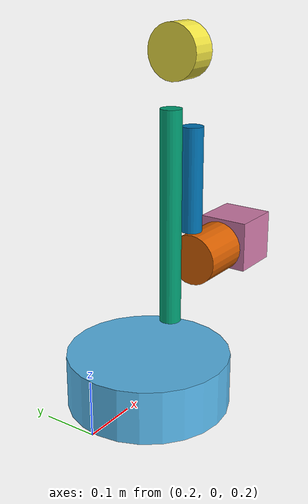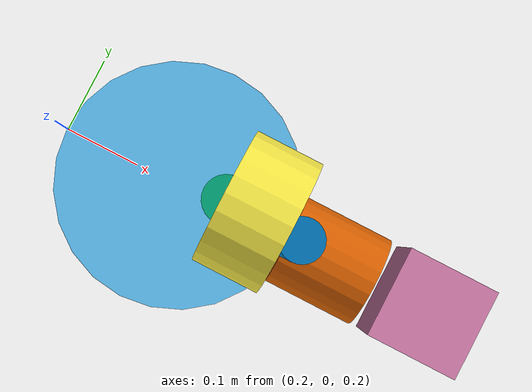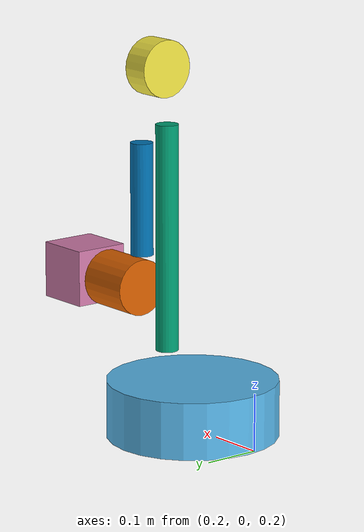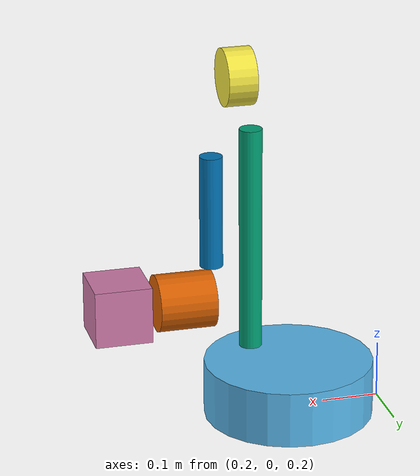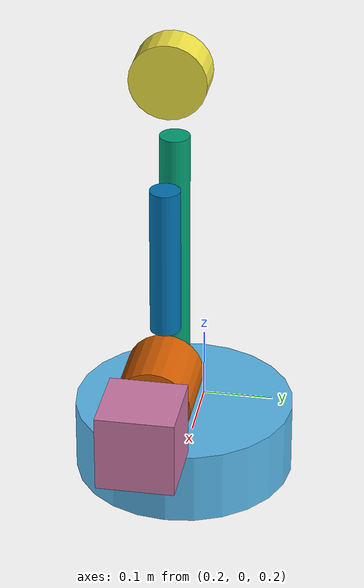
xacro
<?xml version="1.0"?>
<robot xmlns:xacro="http://www.ros.org/wiki/xacro" name="mr2_manipulator_ak_can">
  <xacro:arg name="can_iface" default="can0"/>

  <link name="base_link"/>

  <xacro:include filename="manipulator.xacro"/>
  <xacro:include filename="$(find mr2_rover_description)/ros2_control/rover_can.ros2_control.xacro"/>

  <xacro:manipulator/>

  <xacro:rover_can_ros2_control name="ArmCanSystem" can_iface="$(arg can_iface)"/>
</robot>

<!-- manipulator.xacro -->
<robot xmlns:xacro="http://www.ros.org/wiki/xacro">
  <!-- Joint limits (shared with ros2_control config) -->
  <xacro:property name="arm_j1_lower_limit" value="-1"/>
  <xacro:property name="arm_j1_upper_limit" value="1"/>
  <xacro:property name="arm_j2_lower_limit" value="-1"/>
  <xacro:property name="arm_j2_upper_limit" value="1"/>
  <xacro:property name="arm_j3_lower_limit" value="-1"/>
  <xacro:property name="arm_j3_upper_limit" value="1"/>
  <xacro:property name="arm_j4_lower_limit" value="-1"/>
  <xacro:property name="arm_j4_upper_limit" value="1"/>
  <xacro:property name="arm_j5_lower_limit" value="-1"/>
  <xacro:property name="arm_j5_upper_limit" value="1"/>
  <xacro:property name="arm_j6_lower_limit" value="-1"/>
  <xacro:property name="arm_j6_upper_limit" value="1"/>

  <xacro:macro name="manipulator" params="length:=0.73 width:=0.49 height:=0.19">
    <link name="arm_l1">
      <inertial>
        <mass value="0.1"/>
        <inertia ixx="0.1" iyy="0.1" izz="0.1" ixy="0" ixz="0" iyz="0"/>
      </inertial>
      <visual>
        <geometry>
          <cylinder radius="0.15" length="0.1"/>
        </geometry>
        <origin xyz="0 0 0.05"/>
      </visual>
      <collision>
        <geometry>
          <cylinder radius="0.15" length="0.1"/>
        </geometry>
        <origin xyz="0 0 0.05"/>
      </collision>
    </link>
    <link name="arm_l2">
      <inertial>
        <mass value="0.1"/>
        <inertia ixx="0.1" iyy="0.1" izz="0.1" ixy="0" ixz="0" iyz="0"/>
      </inertial>
      <visual>
        <geometry>
          <cylinder radius="0.02" length="0.4"/>
        </geometry>
        <origin xyz="0 0 0.2"/>
      </visual>
      <collision>
        <geometry>
          <cylinder radius="0.02" length="0.4"/>
        </geometry>
        <origin xyz="0 0 0.2"/>
      </collision>
    </link>
    <link name="arm_l3">
      <inertial>
        <mass value="0.1"/>
        <inertia ixx="0.1" iyy="0.1" izz="0.1" ixy="0" ixz="0" iyz="0"/>
      </inertial>
      <visual>
        <geometry>
          <cylinder radius="0.05" length="0.05"/>
        </geometry>
        <origin xyz="0.025 0 0" rpy="0 -1.571 0"/>
      </visual>
      <collision>
        <geometry>
          <cylinder radius="0.05" length="0.05"/>
        </geometry>
        <origin xyz="0.025 0 0" rpy="0 -1.571 0"/>
      </collision>
    </link>
    <link name="arm_l4">
      <inertial>
        <mass value="0.1"/>
        <inertia ixx="0.1" iyy="0.1" izz="0.1" ixy="0" ixz="0" iyz="0"/>
      </inertial>
      <visual>
        <geometry>
          <cylinder radius="0.02" length="0.2"/>
        </geometry>
        <origin xyz="0 0 -0.1"/>
      </visual>
      <collision>
        <geometry>
          <cylinder radius="0.02" length="0.2"/>
        </geometry>
        <origin xyz="0 0 -0.1"/>
      </collision>
    </link>
    <link name="arm_l5">
      <inertial>
        <mass value="0.1"/>
        <inertia ixx="0.1" iyy="0.1" izz="0.1" ixy="0" ixz="0" iyz="0"/>
      </inertial>
      <visual>
        <geometry>
          <cylinder radius="0.05" length="0.1"/>
        </geometry>
        <origin xyz="0.05 0 0" rpy="0 -1.571 0"/>
      </visual>
      <collision>
        <geometry>
          <cylinder radius="0.05" length="0.1"/>
        </geometry>
        <origin xyz="0.05 0 0" rpy="0 -1.571 0"/>
      </collision>
    </link>
    <link name="arm_l6">
      <inertial>
        <mass value="0.1"/>
        <inertia ixx="0.1" iyy="0.1" izz="0.1" ixy="0" ixz="0" iyz="0"/>
      </inertial>
      <visual>
        <geometry>
          <box size="0.1 0.1 0.1"/>
        </geometry>
        <origin xyz="0.05 0 0" rpy="0 0 0"/>
      </visual>
      <collision>
        <geometry>
          <box size="0.1 0.1 0.1"/>
        </geometry>
        <origin xyz="0.05 0 0" rpy="0 0 0"/>
      </collision>
    </link>
    <joint name="arm_j1" type="revolute">
      <parent link="base_link"/>
      <child link="arm_l1"/>
      <origin xyz="${length/2.0} 0 ${height}" rpy="0 0 0"/>
      <axis xyz="0 0 1"/>
      <limit lower="${arm_j1_lower_limit}" upper="${arm_j1_upper_limit}" effort="50" velocity="1.0"/>
    </joint>
    <joint name="arm_j2" type="revolute">
      <parent link="arm_l1"/>
      <child link="arm_l2"/>
      <origin xyz="0.070 0 0.136" rpy="0 0 0"/>
      <axis xyz="0 1 0"/>
      <limit lower="${arm_j2_lower_limit}" upper="${arm_j2_upper_limit}" effort="50" velocity="1.0"/>
    </joint>
    <joint name="arm_j3" type="revolute">
      <parent link="arm_l2"/>
      <child link="arm_l3"/>
      <origin xyz="0 0 0.495" rpy="0 0 0"/>
      <axis xyz="0 1 0"/>
      <limit lower="${arm_j3_lower_limit}" upper="${arm_j3_upper_limit}" effort="50" velocity="1.0"/>
    </joint>
    <joint name="arm_j4" type="revolute">
      <parent link="arm_l3"/>
      <child link="arm_l4"/>
      <origin xyz="0.070 0 -0.138" rpy="0 0 0"/>
      <axis xyz="0 0 1"/>
      <limit lower="${arm_j4_lower_limit}" upper="${arm_j4_upper_limit}" effort="50" velocity="1.0"/>
    </joint>
    <joint name="arm_j5" type="revolute">
      <parent link="arm_l4"/>
      <child link="arm_l5"/>
      <origin xyz="0 0 -0.260" rpy="0 0 0"/>
      <axis xyz="0 1 0"/>
      <limit lower="${arm_j5_lower_limit}" upper="${arm_j5_upper_limit}" effort="50" velocity="1.0"/>
    </joint>
    <joint name="arm_j6" type="revolute">
      <parent link="arm_l5"/>
      <child link="arm_l6"/>
      <origin xyz="0.116 0 0" rpy="0 0 0"/>
      <axis xyz="1 0 0"/>
      <limit lower="${arm_j6_lower_limit}" upper="${arm_j6_upper_limit}" effort="50" velocity="1.0"/>
    </joint>
  </xacro:macro>
</robot>
